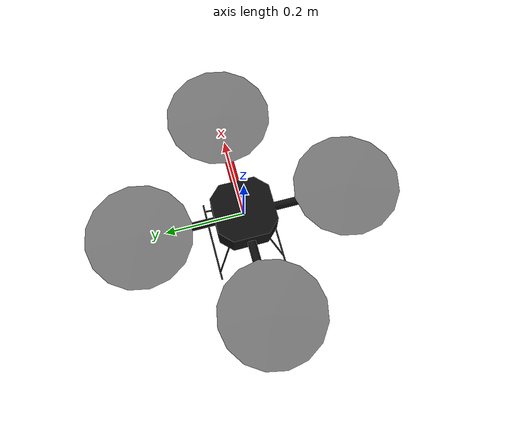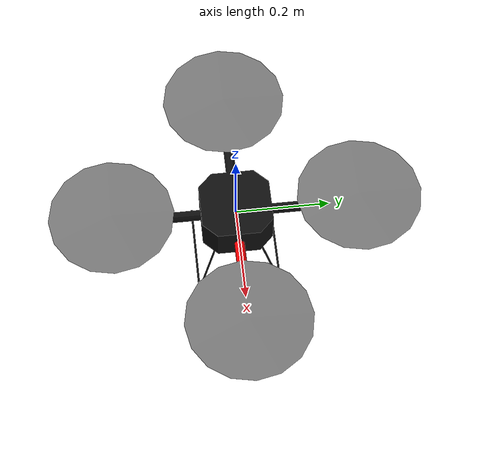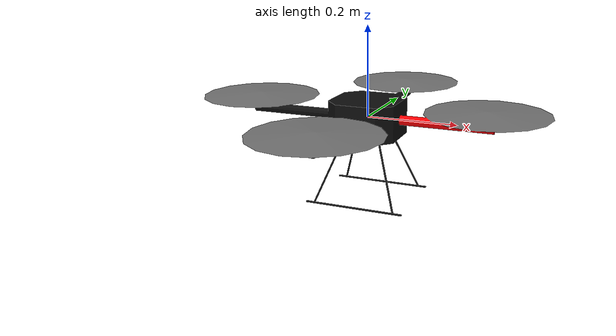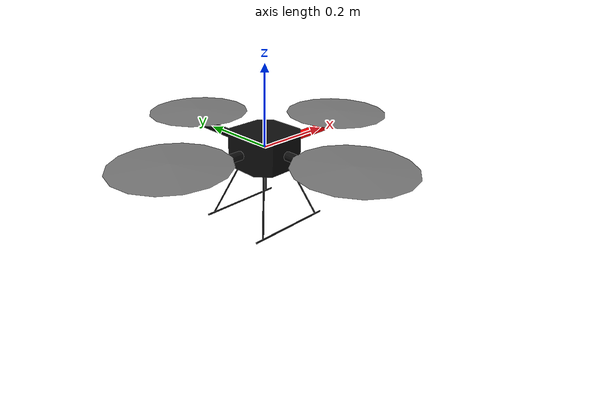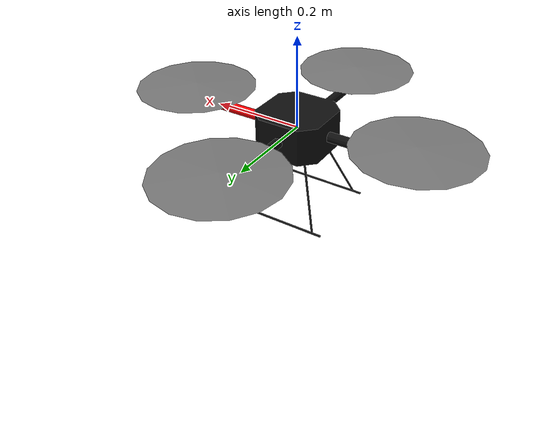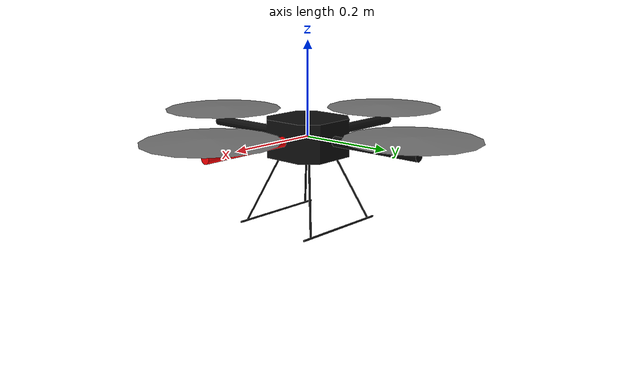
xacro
<?xml version="1.0"?>
<robot name="quadrotor">

  <!-- Main quadrotor link -->
    <link name="base">
      <inertial>
        <mass value="0.6" />
        <origin xyz="0 0 0" />
        <inertia ixx="0.01152" ixy="0.0" ixz="0.0" iyy="0.01152" iyz="0.0" izz="0.0218" />
      </inertial>

      <visual>
        <origin xyz="0 0 0" rpy="0 0 0" />
        <geometry>
          <mesh filename="package://hector_quadrotor_urdf/meshes/quadrotor/quadrotor_base.dae"/>
        </geometry>
      </visual>

      <collision>
        <origin xyz="0 0 0" rpy="0 0 0" />
        <geometry>
          <mesh filename="package://hector_quadrotor_urdf/meshes/quadrotor/quadrotor_base.stl"/>
        </geometry>
      </collision>
    </link>

  <!-- North motor -->
  <link name="motor-n">
      <pose>0.2 0 0 0 0 0</pose>
      <inertial>
        <mass value="0.05" />
        <origin xyz="0 0 0" />
        <inertia ixx="0.001" ixy="0.0" ixz="0.0" iyy="0.001" iyz="0.0" izz="0.001" />
      </inertial>

      <visual>
        <geometry>
          <cylinder radius="0.025" length="0.05"/>
        </geometry>
      </visual>

      <collision>
        <geometry>
          <cylinder radius="0.05" length="0.1"/>
        </geometry>
      </collision>
  </link>

  <!-- South motor -->
  <link name="motor-s">
      <pose>-0.2 0 0 0 0 0</pose>
      <inertial>
        <mass value="0.05" />
        <origin xyz="0 0 0" />
        <inertia ixx="0.001" ixy="0.0" ixz="0.0" iyy="0.001" iyz="0.0" izz="0.001" />
      </inertial>

      <visual>
        <geometry>
          <cylinder radius="0.025" length="0.05"/>
        </geometry>
      </visual>

      <collision>
        <geometry>
          <cylinder radius="0.05" length="0.1"/>
        </geometry>
      </collision>
  </link>

  <!-- East motor -->
  <link name="motor-e">
      <pose>0 -0.2 0 0 0 0</pose>
      <inertial>
        <mass value="0.05" />
        <origin xyz="0 0 0" />
        <inertia ixx="0.001" ixy="0.0" ixz="0.0" iyy="0.001" iyz="0.0" izz="0.001" />
      </inertial>

      <visual>
        <geometry>
          <cylinder radius="0.025" length="0.05"/>
        </geometry>
      </visual>

      <collision>
        <geometry>
          <cylinder radius="0.05" length="0.1"/>
        </geometry>
      </collision>
  </link>

  <!-- West motor -->
  <link name="motor-w">
      <pose>0 0.2 0 0 0 0</pose>
      <inertial>
        <mass value="0.05" />
        <origin xyz="0 0 0" />
        <inertia ixx="0.001" ixy="0.0" ixz="0.0" iyy="0.001" iyz="0.0" izz="0.001" />
      </inertial>

      <visual>
        <geometry>
          <cylinder radius="0.025" length="0.05"/>
        </geometry>
      </visual>

      <collision>
        <geometry>
          <cylinder radius="0.05" length="0.1"/>
        </geometry>
      </collision>
  </link>

  <joint name="motor-n-glue" type="fixed">
       <parent link="base"/>
       <child link="motor-n"/>
       <origin xyz="0 0 0" rpy="0 0 0" />
  </joint>
  <joint name="motor-s-glue" type="fixed">
       <parent link="base"/>
       <child link="motor-s"/>
       <origin xyz="0 0 0" rpy="0 0 0" />
  </joint>
  <joint name="motor-e-glue" type="fixed">
       <parent link="base"/>
       <child link="motor-e"/>
       <origin xyz="0 0 0" rpy="0 0 0" />
  </joint>
   <joint name="motor-w-glue" type="fixed">
       <parent link="base"/>
       <child link="motor-w"/>
       <origin xyz="0 0 0" rpy="0 0 0" />
  </joint>

</robot>
